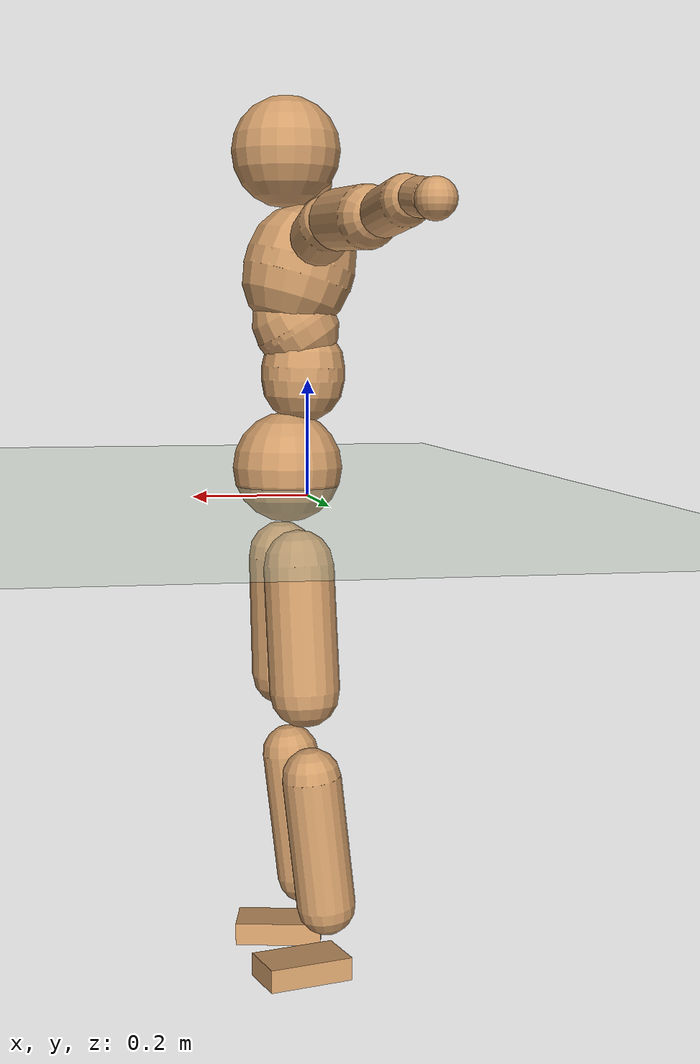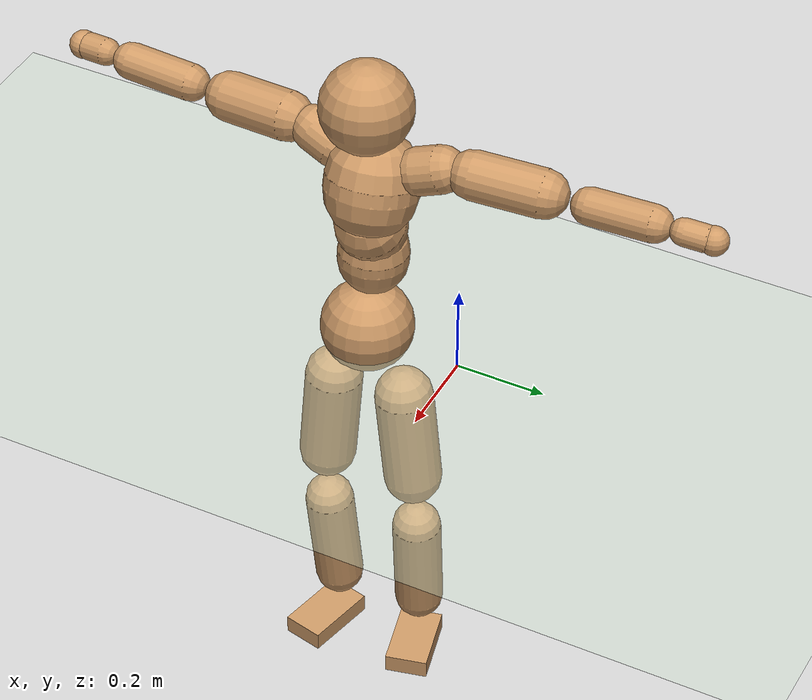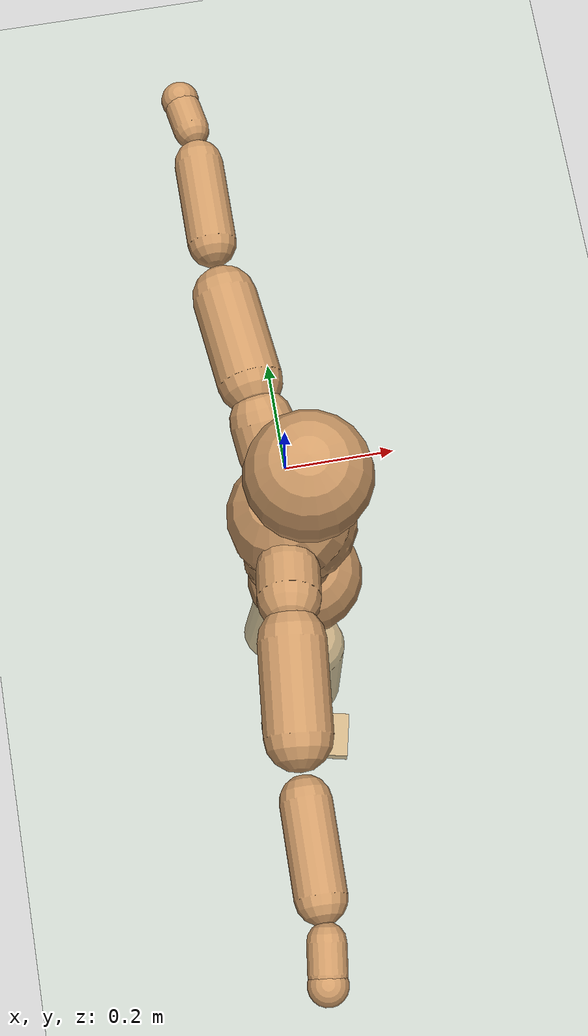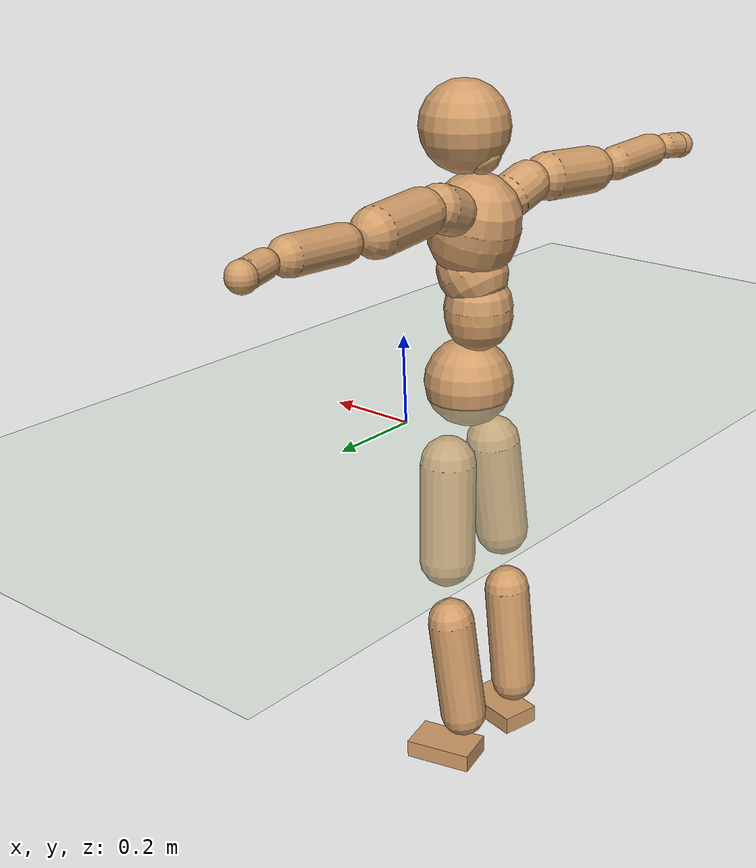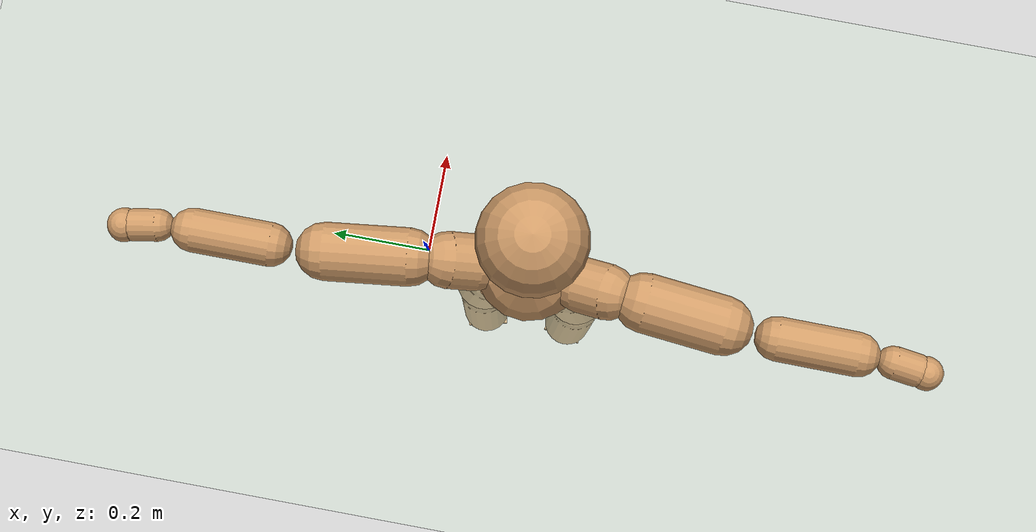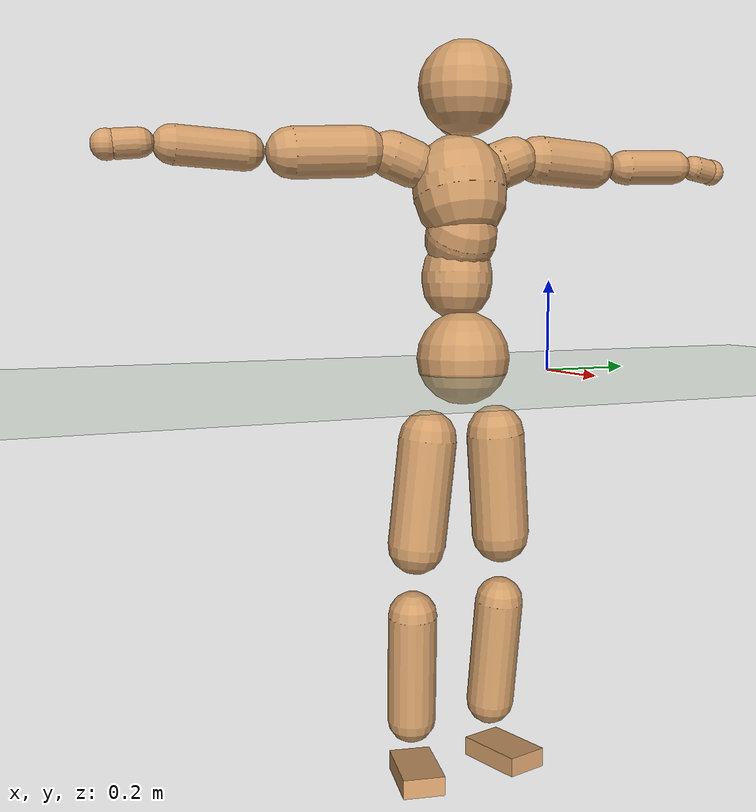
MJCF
<mujoco model="humanoid">
  <compiler coordinate="local" angle="radian"/>
  <default>
    <joint damping="0.0" armature="0.01" stiffness="0.0" limited="true"/>
    <geom conaffinity="1" condim="3" contype="7" margin="0.001" rgba="0.8 0.6 .4 1"/>
  </default>
  <asset>
    <texture type="skybox" builtin="gradient" rgb1=".4 .5 .6" rgb2="0 0 0" width="100" height="100"/>
    <texture builtin="flat" height="1278" mark="cross" markrgb="1 1 1" name="texgeom" random="0.01" rgb1="0.8 0.6 0.4" rgb2="0.8 0.6 0.4" type="cube" width="127"/>
    <texture builtin="checker" height="100" name="texplane" rgb1="0 0 0" rgb2="0.8 0.8 0.8" type="2d" width="100"/>
    <material name="MatPlane" reflectance="0.5" shininess="1" specular="1" texrepeat="60 60" texture="texplane"/>
    <material name="geom" texture="texgeom" texuniform="true"/>
  </asset>
  <worldbody>
    <light cutoff="100" diffuse="1 1 1" dir="-0 0 -1.3" directional="true" exponent="1" pos="0 0 1.3" specular=".1 .1 .1"/>
    <geom conaffinity="1" condim="3" name="floor" pos="0 0 0" rgba="0.8 0.9 0.8 1" size="100 100 .2" type="plane" material="MatPlane"/>
    <body name="Pelvis" pos="-0.0003 -0.2161 0.0334">
      <freejoint name="Pelvis"/>
      <geom type="sphere" contype="1" conaffinity="1" density="500" size="0.1028" pos="0.0000 0.0000 0.0000" name="Pelvis"/>
      <body name="L_Hip" pos="-0.0042 0.0788 -0.096">
        <joint name="L_Hip_x" type="hinge" pos="0 0 0" axis="1 0 0" stiffness="800" damping="80" armature="0.02" range="-180.0000 180.0000"/>
        <joint name="L_Hip_y" type="hinge" pos="0 0 0" axis="0 1 0" stiffness="800" damping="80" armature="0.02" range="-180.0000 180.0000"/>
        <joint name="L_Hip_z" type="hinge" pos="0 0 0" axis="0 0 1" stiffness="800" damping="80" armature="0.02" range="-180.0000 180.0000"/>
        <geom type="capsule" contype="1" conaffinity="1" density="500" fromto="-0.0026 0.0063 -0.0781 -0.0105 0.0251 -0.3122" size="0.0649" name="L_Hip"/>
        <body name="L_Knee" pos="-0.0131 0.0313 -0.3903">
          <joint name="L_Knee_x" type="hinge" pos="0 0 0" axis="1 0 0" stiffness="800" damping="80" armature="0.02" range="-180.0000 180.0000"/>
          <joint name="L_Knee_y" type="hinge" pos="0 0 0" axis="0 1 0" stiffness="800" damping="80" armature="0.02" range="-180.0000 180.0000"/>
          <joint name="L_Knee_z" type="hinge" pos="0 0 0" axis="0 0 1" stiffness="800" damping="80" armature="0.02" range="-180.0000 180.0000"/>
          <geom type="capsule" contype="1" conaffinity="1" density="500" fromto="-0.0097 -0.0022 -0.0829 -0.0389 -0.0090 -0.3317" size="0.0551" name="L_Knee"/>
          <body name="L_Ankle" pos="-0.0487 -0.0112 -0.4146">
            <joint name="L_Ankle_x" type="hinge" pos="0 0 0" axis="1 0 0" stiffness="800" damping="80" armature="0.02" range="-180.0000 180.0000"/>
            <joint name="L_Ankle_y" type="hinge" pos="0 0 0" axis="0 1 0" stiffness="800" damping="80" armature="0.02" range="-180.0000 180.0000"/>
            <joint name="L_Ankle_z" type="hinge" pos="0 0 0" axis="0 0 1" stiffness="800" damping="80" armature="0.02" range="-180.0000 180.0000"/>
            <geom type="box" contype="1" conaffinity="1" density="500" pos="0.0579 0.0140 -0.0294" size="0.0813 0.0482 0.0216" quat="0.9930 0.0000 0.0000 0.1181" name="L_Ankle"/>
            <body name="L_Toe" pos="0.1158 0.0279 -0.0588">
              <joint name="L_Toe_x" type="hinge" pos="0 0 0" axis="1 0 0" stiffness="500" damping="50" armature="0.02" range="-180.0000 180.0000"/>
              <joint name="L_Toe_y" type="hinge" pos="0 0 0" axis="0 1 0" stiffness="500" damping="50" armature="0.02" range="-180.0000 180.0000"/>
              <joint name="L_Toe_z" type="hinge" pos="0 0 0" axis="0 0 1" stiffness="500" damping="50" armature="0.02" range="-180.0000 180.0000"/>
              <geom type="box" contype="1" conaffinity="1" density="500" pos="0.0000 0.0000 0.0291" size="0.001 0.0024 0.0011" quat="0.9923 0.0000 0.0000 0.1241" name="L_Toe"/>
            </body>
          </body>
        </body>
      </body>
      <body name="R_Hip" pos="-0.0002 -0.0764 -0.0963">
        <joint name="R_Hip_x" type="hinge" pos="0 0 0" axis="1 0 0" stiffness="800" damping="80" armature="0.02" range="-180.0000 180.0000"/>
        <joint name="R_Hip_y" type="hinge" pos="0 0 0" axis="0 1 0" stiffness="800" damping="80" armature="0.02" range="-180.0000 180.0000"/>
        <joint name="R_Hip_z" type="hinge" pos="0 0 0" axis="0 0 1" stiffness="800" damping="80" armature="0.02" range="-180.0000 180.0000"/>
        <geom type="capsule" contype="1" conaffinity="1" density="500" fromto="-0.0030 -0.0078 -0.0794 -0.0118 -0.0313 -0.3175" size="0.064" name="R_Hip"/>
        <body name="R_Knee" pos="-0.0148 -0.0391 -0.3969">
          <joint name="R_Knee_x" type="hinge" pos="0 0 0" axis="1 0 0" stiffness="800" damping="80" armature="0.02" range="-180.0000 180.0000"/>
          <joint name="R_Knee_y" type="hinge" pos="0 0 0" axis="0 1 0" stiffness="800" damping="80" armature="0.02" range="-180.0000 180.0000"/>
          <joint name="R_Knee_z" type="hinge" pos="0 0 0" axis="0 0 1" stiffness="800" damping="80" armature="0.02" range="-180.0000 180.0000"/>
          <geom type="capsule" contype="1" conaffinity="1" density="500" fromto="-0.0093 0.0029 -0.0833 -0.0371 0.0115 -0.3334" size="0.0552" name="R_Knee"/>
          <body name="R_Ankle" pos="-0.0464 0.0144 -0.4167">
            <joint name="R_Ankle_x" type="hinge" pos="0 0 0" axis="1 0 0" stiffness="800" damping="80" armature="0.02" range="-180.0000 180.0000"/>
            <joint name="R_Ankle_y" type="hinge" pos="0 0 0" axis="0 1 0" stiffness="800" damping="80" armature="0.02" range="-180.0000 180.0000"/>
            <joint name="R_Ankle_z" type="hinge" pos="0 0 0" axis="0 0 1" stiffness="800" damping="80" armature="0.02" range="-180.0000 180.0000"/>
            <geom type="box" contype="1" conaffinity="1" density="500" pos="0.0600 -0.0133 -0.0257" size="0.0838 0.0469 0.0216" quat="0.9941 0.0000 0.0000 -0.1088" name="R_Ankle"/>
            <body name="R_Toe" pos="0.12 -0.0266 -0.0514">
              <joint name="R_Toe_x" type="hinge" pos="0 0 0" axis="1 0 0" stiffness="500" damping="50" armature="0.02" range="-180.0000 180.0000"/>
              <joint name="R_Toe_y" type="hinge" pos="0 0 0" axis="0 1 0" stiffness="500" damping="50" armature="0.02" range="-180.0000 180.0000"/>
              <joint name="R_Toe_z" type="hinge" pos="0 0 0" axis="0 0 1" stiffness="500" damping="50" armature="0.02" range="-180.0000 180.0000"/>
              <geom type="box" contype="1" conaffinity="1" density="500" pos="0.0000 0.0000 0.0272" size="0.0009 0.0023 0.0012" quat="0.9951 0.0000 0.0000 -0.0993" name="R_Toe"/>
            </body>
          </body>
        </body>
      </body>
      <body name="Torso" pos="-0.0284 -0.002 0.1105">
        <joint name="Torso_x" type="hinge" pos="0 0 0" axis="1 0 0" stiffness="1000" damping="100" armature="0.02" range="-180.0000 180.0000"/>
        <joint name="Torso_y" type="hinge" pos="0 0 0" axis="0 1 0" stiffness="1000" damping="100" armature="0.02" range="-180.0000 180.0000"/>
        <joint name="Torso_z" type="hinge" pos="0 0 0" axis="0 0 1" stiffness="1000" damping="100" armature="0.02" range="-180.0000 180.0000"/>
        <geom type="capsule" contype="1" conaffinity="1" density="500" fromto="-0.0017 0.0020 0.0754 -0.0011 0.0013 0.0503" size="0.0776" name="Torso"/>
        <body name="Spine" pos="-0.0028 0.0033 0.1257">
          <joint name="Spine_x" type="hinge" pos="0 0 0" axis="1 0 0" stiffness="1000" damping="100" armature="0.02" range="-180.0000 180.0000"/>
          <joint name="Spine_y" type="hinge" pos="0 0 0" axis="0 1 0" stiffness="1000" damping="100" armature="0.02" range="-180.0000 180.0000"/>
          <joint name="Spine_z" type="hinge" pos="0 0 0" axis="0 0 1" stiffness="1000" damping="100" armature="0.02" range="-180.0000 180.0000"/>
          <geom type="capsule" contype="1" conaffinity="1" density="500" fromto="0.0194 0.0007 0.0307 0.0129 0.0005 0.0205" size="0.0786" name="Spine"/>
          <body name="Chest" pos="0.0323 0.0011 0.0512">
            <joint name="Chest_x" type="hinge" pos="0 0 0" axis="1 0 0" stiffness="1000" damping="100" armature="0.02" range="-180.0000 180.0000"/>
            <joint name="Chest_y" type="hinge" pos="0 0 0" axis="0 1 0" stiffness="1000" damping="100" armature="0.02" range="-180.0000 180.0000"/>
            <joint name="Chest_z" type="hinge" pos="0 0 0" axis="0 0 1" stiffness="1000" damping="100" armature="0.02" range="-180.0000 180.0000"/>
            <geom type="capsule" contype="1" conaffinity="1" density="500" fromto="-0.0274 -0.0010 0.0934 -0.0183 -0.0007 0.0623" size="0.1028" name="Chest"/>
            <body name="Neck" pos="-0.0526 -0.0031 0.2212">
              <joint name="Neck_x" type="hinge" pos="0 0 0" axis="1 0 0" stiffness="500" damping="50" armature="0.02" range="-180.0000 180.0000"/>
              <joint name="Neck_y" type="hinge" pos="0 0 0" axis="0 1 0" stiffness="500" damping="50" armature="0.02" range="-180.0000 180.0000"/>
              <joint name="Neck_z" type="hinge" pos="0 0 0" axis="0 0 1" stiffness="500" damping="50" armature="0.02" range="-180.0000 180.0000"/>
              <geom type="capsule" contype="1" conaffinity="1" density="500" fromto="0.0108 0.0005 0.0136 0.0434 0.0021 0.0544" size="0.0428" name="Neck"/>
              <body name="Head" pos="0.0542 0.0026 0.068">
                <joint name="Head_x" type="hinge" pos="0 0 0" axis="1 0 0" stiffness="500" damping="50" armature="0.02" range="-180.0000 180.0000"/>
                <joint name="Head_y" type="hinge" pos="0 0 0" axis="0 1 0" stiffness="500" damping="50" armature="0.02" range="-180.0000 180.0000"/>
                <joint name="Head_z" type="hinge" pos="0 0 0" axis="0 0 1" stiffness="500" damping="50" armature="0.02" range="-180.0000 180.0000"/>
                <geom type="sphere" contype="1" conaffinity="1" density="500" size="0.1008" pos="0.0000 0.0000 0.0000" name="Head"/>
              </body>
            </body>
            <body name="L_Thorax" pos="-0.0397 0.0791 0.1235">
              <joint name="L_Thorax_x" type="hinge" pos="0 0 0" axis="1 0 0" stiffness="500" damping="50" armature="0.02" range="-180.0000 180.0000"/>
              <joint name="L_Thorax_y" type="hinge" pos="0 0 0" axis="0 1 0" stiffness="500" damping="50" armature="0.02" range="-180.0000 180.0000"/>
              <joint name="L_Thorax_z" type="hinge" pos="0 0 0" axis="0 0 1" stiffness="500" damping="50" armature="0.02" range="-180.0000 180.0000"/>
              <geom type="capsule" contype="1" conaffinity="1" density="500" fromto="-0.0021 0.0167 0.0062 -0.0085 0.0669 0.0248" size="0.0521" name="L_Thorax"/>
              <body name="L_Shoulder" pos="-0.0106 0.0836 0.0309">
                <joint name="L_Shoulder_x" type="hinge" pos="0 0 0" axis="1 0 0" stiffness="500" damping="50" armature="0.02" range="-720.0000 720.0000"/>
                <joint name="L_Shoulder_y" type="hinge" pos="0 0 0" axis="0 1 0" stiffness="500" damping="50" armature="0.02" range="-720.0000 720.0000"/>
                <joint name="L_Shoulder_z" type="hinge" pos="0 0 0" axis="0 0 1" stiffness="500" damping="50" armature="0.02" range="-720.0000 720.0000"/>
                <geom type="capsule" contype="1" conaffinity="1" density="500" fromto="-0.0057 0.0510 -0.0020 -0.0230 0.2039 -0.0080" size="0.0532" name="L_Shoulder"/>
                <body name="L_Elbow" pos="-0.0287 0.2549 -0.0101">
                  <joint name="L_Elbow_x" type="hinge" pos="0 0 0" axis="1 0 0" stiffness="500" damping="50" armature="0.02" range="-720.0000 720.0000"/>
                  <joint name="L_Elbow_y" type="hinge" pos="0 0 0" axis="0 1 0" stiffness="500" damping="50" armature="0.02" range="-720.0000 720.0000"/>
                  <joint name="L_Elbow_z" type="hinge" pos="0 0 0" axis="0 0 1" stiffness="500" damping="50" armature="0.02" range="-720.0000 720.0000"/>
                  <geom type="capsule" contype="1" conaffinity="1" density="500" fromto="-0.0000 0.0473 0.0020 -0.0001 0.1891 0.0082" size="0.0402" name="L_Elbow"/>
                  <body name="L_Wrist" pos="-0.0002 0.2363 0.0102">
                    <joint name="L_Wrist_x" type="hinge" pos="0 0 0" axis="1 0 0" stiffness="300" damping="30" armature="0.02" range="-180.0000 180.0000"/>
                    <joint name="L_Wrist_y" type="hinge" pos="0 0 0" axis="0 1 0" stiffness="300" damping="30" armature="0.02" range="-180.0000 180.0000"/>
                    <joint name="L_Wrist_z" type="hinge" pos="0 0 0" axis="0 0 1" stiffness="300" damping="30" armature="0.02" range="-180.0000 180.0000"/>
                    <geom type="capsule" contype="1" conaffinity="1" density="500" fromto="-0.0026 0.0155 -0.0019 -0.0103 0.0620 -0.0075" size="0.0296" name="L_Wrist"/>
                    <body name="L_Hand" pos="-0.0128 0.0775 -0.0094">
                      <joint name="L_Hand_x" type="hinge" pos="0 0 0" axis="1 0 0" stiffness="300" damping="30" armature="0.02" range="-180.0000 180.0000"/>
                      <joint name="L_Hand_y" type="hinge" pos="0 0 0" axis="0 1 0" stiffness="300" damping="30" armature="0.02" range="-180.0000 180.0000"/>
                      <joint name="L_Hand_z" type="hinge" pos="0 0 0" axis="0 0 1" stiffness="300" damping="30" armature="0.02" range="-180.0000 180.0000"/>
                      <geom type="sphere" contype="1" conaffinity="1" density="500" size="0.0314" pos="0.0000 0.0000 0.0000" name="L_Hand"/>
                    </body>
                  </body>
                </body>
              </body>
            </body>
            <body name="R_Thorax" pos="-0.0447 -0.0811 0.1223">
              <joint name="R_Thorax_x" type="hinge" pos="0 0 0" axis="1 0 0" stiffness="500" damping="50" armature="0.02" range="-180.0000 180.0000"/>
              <joint name="R_Thorax_y" type="hinge" pos="0 0 0" axis="0 1 0" stiffness="500" damping="50" armature="0.02" range="-180.0000 180.0000"/>
              <joint name="R_Thorax_z" type="hinge" pos="0 0 0" axis="0 0 1" stiffness="500" damping="50" armature="0.02" range="-180.0000 180.0000"/>
              <geom type="capsule" contype="1" conaffinity="1" density="500" fromto="-0.0020 -0.0171 0.0067 -0.0082 -0.0685 0.0267" size="0.051" name="R_Thorax"/>
              <body name="R_Shoulder" pos="-0.0102 -0.0856 0.0334">
                <joint name="R_Shoulder_x" type="hinge" pos="0 0 0" axis="1 0 0" stiffness="500" damping="50" armature="0.02" range="-720.0000 720.0000"/>
                <joint name="R_Shoulder_y" type="hinge" pos="0 0 0" axis="0 1 0" stiffness="500" damping="50" armature="0.02" range="-720.0000 720.0000"/>
                <joint name="R_Shoulder_z" type="hinge" pos="0 0 0" axis="0 0 1" stiffness="500" damping="50" armature="0.02" range="-720.0000 720.0000"/>
                <geom type="capsule" contype="1" conaffinity="1" density="500" fromto="-0.0048 -0.0493 -0.0027 -0.0191 -0.1973 -0.0107" size="0.0546" name="R_Shoulder"/>
                <body name="R_Elbow" pos="-0.0239 -0.2466 -0.0134">
                  <joint name="R_Elbow_x" type="hinge" pos="0 0 0" axis="1 0 0" stiffness="500" damping="50" armature="0.02" range="-720.0000 720.0000"/>
                  <joint name="R_Elbow_y" type="hinge" pos="0 0 0" axis="0 1 0" stiffness="500" damping="50" armature="0.02" range="-720.0000 720.0000"/>
                  <joint name="R_Elbow_z" type="hinge" pos="0 0 0" axis="0 0 1" stiffness="500" damping="50" armature="0.02" range="-720.0000 720.0000"/>
                  <geom type="capsule" contype="1" conaffinity="1" density="500" fromto="-0.0006 -0.0490 0.0023 -0.0024 -0.1958 0.0092" size="0.0407" name="R_Elbow"/>
                  <body name="R_Wrist" pos="-0.003 -0.2448 0.0115">
                    <joint name="R_Wrist_x" type="hinge" pos="0 0 0" axis="1 0 0" stiffness="300" damping="30" armature="0.02" range="-180.0000 180.0000"/>
                    <joint name="R_Wrist_y" type="hinge" pos="0 0 0" axis="0 1 0" stiffness="300" damping="30" armature="0.02" range="-180.0000 180.0000"/>
                    <joint name="R_Wrist_z" type="hinge" pos="0 0 0" axis="0 0 1" stiffness="300" damping="30" armature="0.02" range="-180.0000 180.0000"/>
                    <geom type="capsule" contype="1" conaffinity="1" density="500" fromto="-0.0020 -0.0155 -0.0014 -0.0080 -0.0621 -0.0056" size="0.0303" name="R_Wrist"/>
                    <body name="R_Hand" pos="-0.0101 -0.0776 -0.007">
                      <joint name="R_Hand_x" type="hinge" pos="0 0 0" axis="1 0 0" stiffness="300" damping="30" armature="0.02" range="-180.0000 180.0000"/>
                      <joint name="R_Hand_y" type="hinge" pos="0 0 0" axis="0 1 0" stiffness="300" damping="30" armature="0.02" range="-180.0000 180.0000"/>
                      <joint name="R_Hand_z" type="hinge" pos="0 0 0" axis="0 0 1" stiffness="300" damping="30" armature="0.02" range="-180.0000 180.0000"/>
                      <geom type="sphere" contype="1" conaffinity="1" density="500" size="0.0314" pos="0.0000 0.0000 0.0000" name="R_Hand"/>
                    </body>
                  </body>
                </body>
              </body>
            </body>
          </body>
        </body>
      </body>
    </body>
  </worldbody>
  <actuator>
    <motor name="L_Hip_x" joint="L_Hip_x" gear="500"/>
    <motor name="L_Hip_y" joint="L_Hip_y" gear="500"/>
    <motor name="L_Hip_z" joint="L_Hip_z" gear="500"/>
    <motor name="L_Knee_x" joint="L_Knee_x" gear="500"/>
    <motor name="L_Knee_y" joint="L_Knee_y" gear="500"/>
    <motor name="L_Knee_z" joint="L_Knee_z" gear="500"/>
    <motor name="L_Ankle_x" joint="L_Ankle_x" gear="500"/>
    <motor name="L_Ankle_y" joint="L_Ankle_y" gear="500"/>
    <motor name="L_Ankle_z" joint="L_Ankle_z" gear="500"/>
    <motor name="L_Toe_x" joint="L_Toe_x" gear="500"/>
    <motor name="L_Toe_y" joint="L_Toe_y" gear="500"/>
    <motor name="L_Toe_z" joint="L_Toe_z" gear="500"/>
    <motor name="R_Hip_x" joint="R_Hip_x" gear="500"/>
    <motor name="R_Hip_y" joint="R_Hip_y" gear="500"/>
    <motor name="R_Hip_z" joint="R_Hip_z" gear="500"/>
    <motor name="R_Knee_x" joint="R_Knee_x" gear="500"/>
    <motor name="R_Knee_y" joint="R_Knee_y" gear="500"/>
    <motor name="R_Knee_z" joint="R_Knee_z" gear="500"/>
    <motor name="R_Ankle_x" joint="R_Ankle_x" gear="500"/>
    <motor name="R_Ankle_y" joint="R_Ankle_y" gear="500"/>
    <motor name="R_Ankle_z" joint="R_Ankle_z" gear="500"/>
    <motor name="R_Toe_x" joint="R_Toe_x" gear="500"/>
    <motor name="R_Toe_y" joint="R_Toe_y" gear="500"/>
    <motor name="R_Toe_z" joint="R_Toe_z" gear="500"/>
    <motor name="Torso_x" joint="Torso_x" gear="500"/>
    <motor name="Torso_y" joint="Torso_y" gear="500"/>
    <motor name="Torso_z" joint="Torso_z" gear="500"/>
    <motor name="Spine_x" joint="Spine_x" gear="500"/>
    <motor name="Spine_y" joint="Spine_y" gear="500"/>
    <motor name="Spine_z" joint="Spine_z" gear="500"/>
    <motor name="Chest_x" joint="Chest_x" gear="500"/>
    <motor name="Chest_y" joint="Chest_y" gear="500"/>
    <motor name="Chest_z" joint="Chest_z" gear="500"/>
    <motor name="Neck_x" joint="Neck_x" gear="500"/>
    <motor name="Neck_y" joint="Neck_y" gear="500"/>
    <motor name="Neck_z" joint="Neck_z" gear="500"/>
    <motor name="Head_x" joint="Head_x" gear="500"/>
    <motor name="Head_y" joint="Head_y" gear="500"/>
    <motor name="Head_z" joint="Head_z" gear="500"/>
    <motor name="L_Thorax_x" joint="L_Thorax_x" gear="500"/>
    <motor name="L_Thorax_y" joint="L_Thorax_y" gear="500"/>
    <motor name="L_Thorax_z" joint="L_Thorax_z" gear="500"/>
    <motor name="L_Shoulder_x" joint="L_Shoulder_x" gear="500"/>
    <motor name="L_Shoulder_y" joint="L_Shoulder_y" gear="500"/>
    <motor name="L_Shoulder_z" joint="L_Shoulder_z" gear="500"/>
    <motor name="L_Elbow_x" joint="L_Elbow_x" gear="500"/>
    <motor name="L_Elbow_y" joint="L_Elbow_y" gear="500"/>
    <motor name="L_Elbow_z" joint="L_Elbow_z" gear="500"/>
    <motor name="L_Wrist_x" joint="L_Wrist_x" gear="500"/>
    <motor name="L_Wrist_y" joint="L_Wrist_y" gear="500"/>
    <motor name="L_Wrist_z" joint="L_Wrist_z" gear="500"/>
    <motor name="L_Hand_x" joint="L_Hand_x" gear="500"/>
    <motor name="L_Hand_y" joint="L_Hand_y" gear="500"/>
    <motor name="L_Hand_z" joint="L_Hand_z" gear="500"/>
    <motor name="R_Thorax_x" joint="R_Thorax_x" gear="500"/>
    <motor name="R_Thorax_y" joint="R_Thorax_y" gear="500"/>
    <motor name="R_Thorax_z" joint="R_Thorax_z" gear="500"/>
    <motor name="R_Shoulder_x" joint="R_Shoulder_x" gear="500"/>
    <motor name="R_Shoulder_y" joint="R_Shoulder_y" gear="500"/>
    <motor name="R_Shoulder_z" joint="R_Shoulder_z" gear="500"/>
    <motor name="R_Elbow_x" joint="R_Elbow_x" gear="500"/>
    <motor name="R_Elbow_y" joint="R_Elbow_y" gear="500"/>
    <motor name="R_Elbow_z" joint="R_Elbow_z" gear="500"/>
    <motor name="R_Wrist_x" joint="R_Wrist_x" gear="500"/>
    <motor name="R_Wrist_y" joint="R_Wrist_y" gear="500"/>
    <motor name="R_Wrist_z" joint="R_Wrist_z" gear="500"/>
    <motor name="R_Hand_x" joint="R_Hand_x" gear="500"/>
    <motor name="R_Hand_y" joint="R_Hand_y" gear="500"/>
    <motor name="R_Hand_z" joint="R_Hand_z" gear="500"/>
  </actuator>
  <contact>
    <exclude body1="Torso" body2="Chest"/>
    <exclude body1="Head" body2="Chest"/>
    <exclude body1="R_Knee" body2="R_Toe"/>
    <exclude body1="R_Knee" body2="L_Ankle"/>
    <exclude body1="R_Knee" body2="L_Toe"/>
    <exclude body1="L_Knee" body2="L_Toe"/>
    <exclude body1="L_Knee" body2="R_Ankle"/>
    <exclude body1="L_Knee" body2="R_Toe"/>
    <exclude body1="L_Shoulder" body2="Chest"/>
    <exclude body1="R_Shoulder" body2="Chest"/>
  </contact>
  <sensor/>
  <size njmax="700" nconmax="700"/>
</mujoco>
